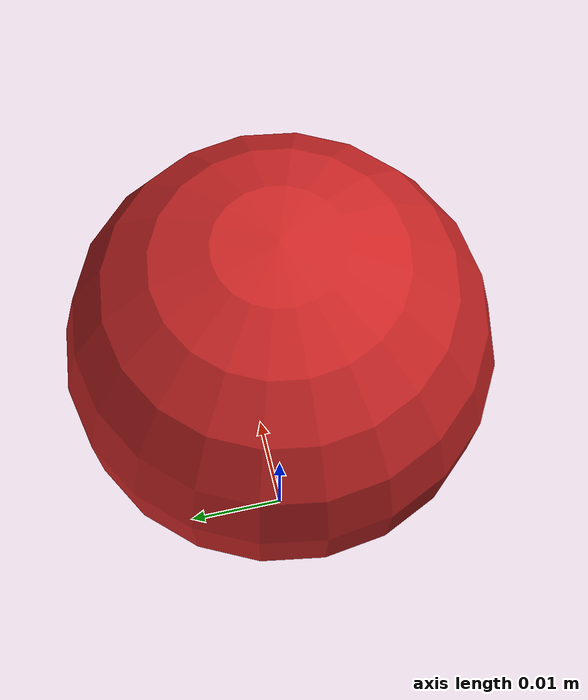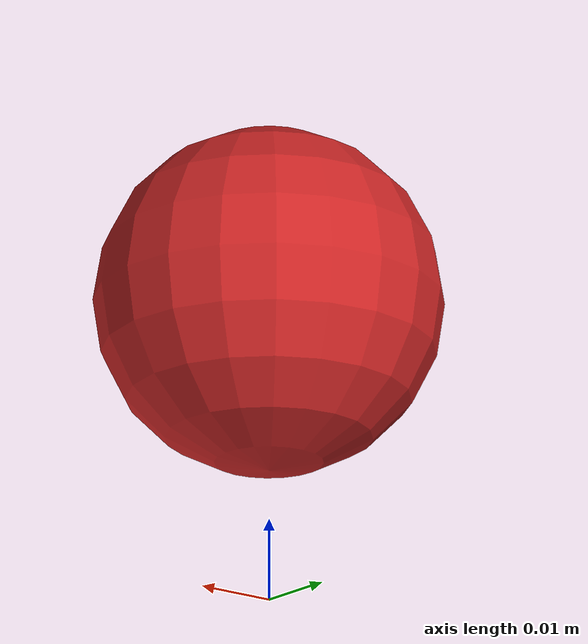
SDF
<?xml version='1.0'?>
<sdf version='1.7'>
    <model name='red_ball_friction'>
      <link name='link'>
        <pose>0 0 0.0375 0 -0 0</pose>
        <inertial>
          <mass>0.02</mass>
          <inertia>
            <ixx>8.25187e-05</ixx>
            <ixy>0</ixy>
            <ixz>0</ixz>
            <iyy>8.25187e-05</iyy>
            <iyz>0</iyz>
            <izz>8.25187e-05</izz>
          </inertia>
          <pose>0 0 0 0 -0 0</pose>
        </inertial>
        <collision name='collision'>
          <geometry>
            <sphere>
              <radius>0.0215</radius>
            </sphere>
          </geometry>
          <surface>
            <contact>
              <poissons_ratio>0.347</poissons_ratio>
              <elastic_modulus>8.8e+09</elastic_modulus>
              <ode>
                <kp>100000</kp>
                <kd>100</kd>
                <max_vel>100</max_vel>
                <min_depth>0.001</min_depth>
              </ode>
            </contact>
            <friction>
              <torsional>
                <coefficient>0.1</coefficient>
                <use_patch_radius>0</use_patch_radius>
                <surface_radius>0.01</surface_radius>
                <ode/>
              </torsional>
              <ode/>
            </friction>
            <bounce/>
          </surface>
          <max_contacts>10</max_contacts>
        </collision>
        <visual name='visual'>
          <geometry>
            <sphere>
              <radius>0.0215</radius>
            </sphere>
          </geometry>
          <material>
            <script>
              <uri>file://media/materials/scripts/gazebo.material</uri>
              <name>Gazebo/RedBright</name>
            </script>
          </material>
        </visual>
        <velocity_decay>
          <linear>0</linear>
          <angular>0.005</angular>
        </velocity_decay>
        <self_collide>0</self_collide>
        <enable_wind>0</enable_wind>
        <kinematic>0</kinematic>
      </link>
        <plugin name="p3d_base_controller" filename="libgazebo_ros_p3d.so">
          <alwaysOn>true</alwaysOn>
          <updateRate>1000.0</updateRate>
          <bodyName>link</bodyName>
          <topicName>red_ball_friction_odom</topicName>
          <gaussianNoise>0.0</gaussianNoise>
          <frameName>world</frameName>
          <xyzOffsets>0 0 0</xyzOffsets>
          <rpyOffsets>0 0 0</rpyOffsets>
        </plugin>
      <!-- Add plugin Air Resistance -->
        <plugin name="fluid_resitance_plugin" filename="libfluid_resitance_plugin.so">
            <reynolds_multTopicName>/reynolds_mult_red_ball</reynolds_multTopicName>
            <fluid_resitanceTopicName>/fluid_resitance_red_ball</fluid_resitanceTopicName>
            <NameLinkToApplyResitance>red_ball_friction::link</NameLinkToApplyResitance>
            <rate>0.0</rate>
            <fluid_resitance_mult>0.0009388203894374999</fluid_resitance_mult>
            <reynolds_mult>2925.1700680272106</reynolds_mult>
        </plugin>
    </model>
</sdf>
